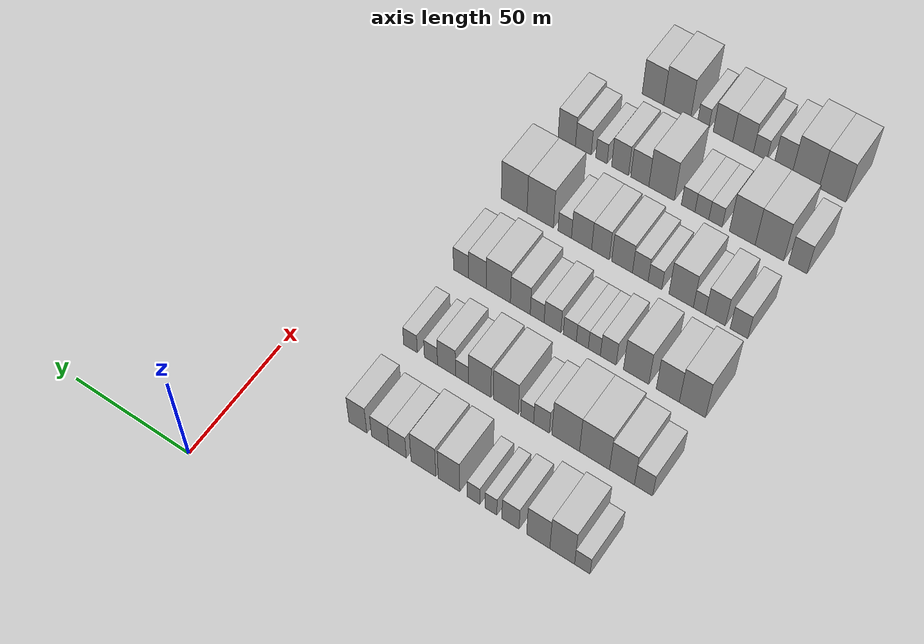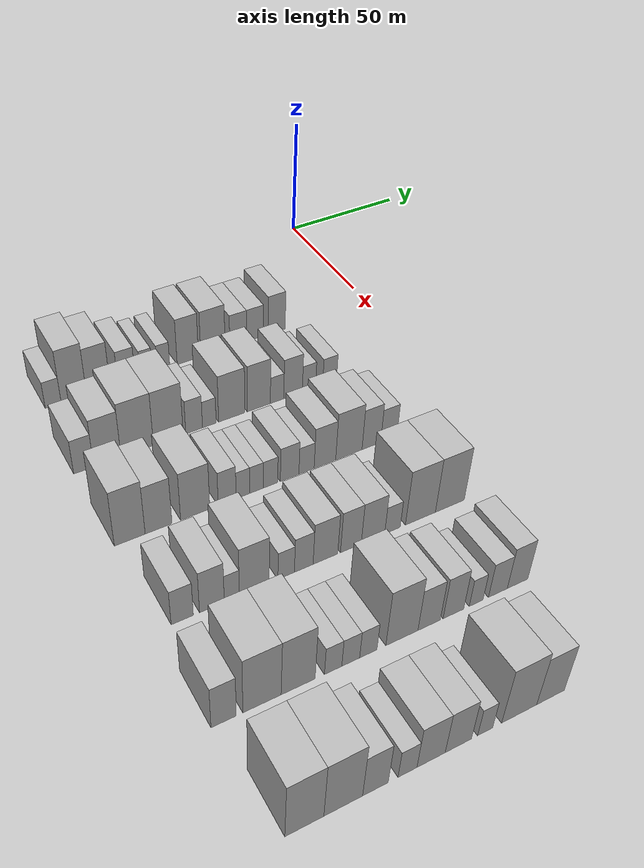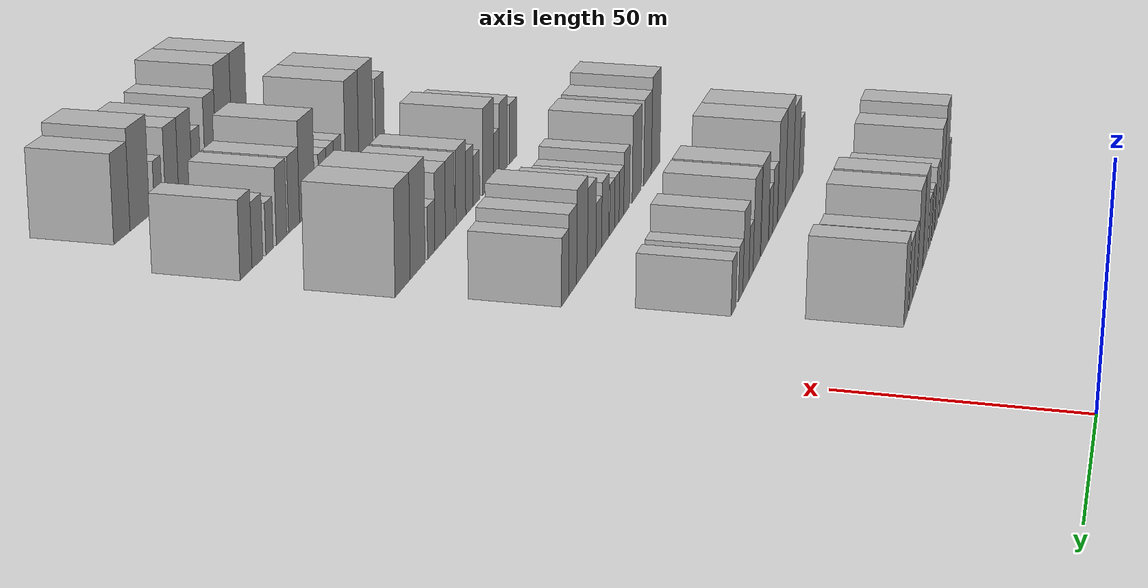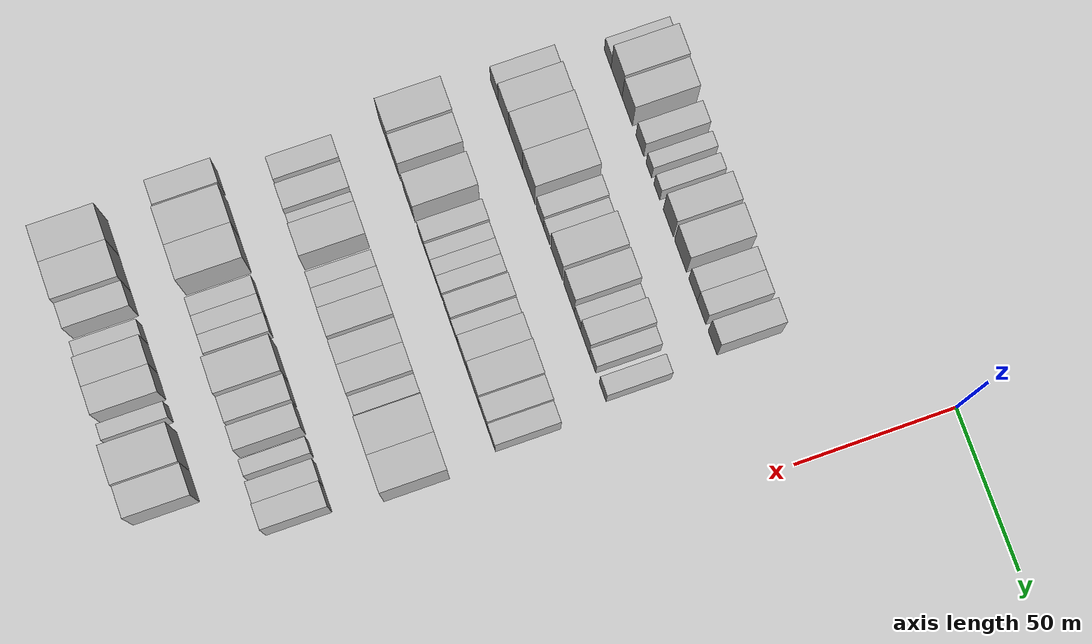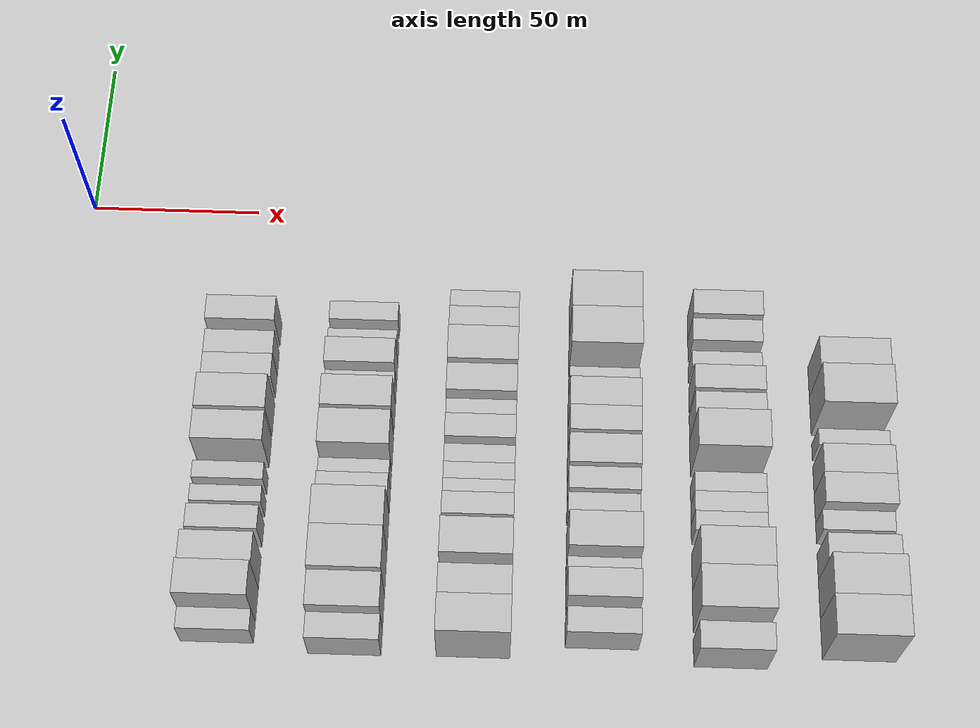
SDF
<sdf version="1.6">
 <world name="default">
  <model name="building_46">
   <static>1</static>
   <pose>50.0000 -131.7362 0 0.000000 0.000000 0.000000</pose>
   <link name="link">
    <pose>0 0 6.00 0 0 0</pose>
    <collision name="collision"><geometry><box><size>20.0000 5.9725 12.0000</size></box></geometry></collision>
    <visual name="visual">
     <cast_shadows>0</cast_shadows>
     <geometry><box><size>20.0000 5.9725 12.0000</size></box></geometry>
     <material>
      <script>
       <uri>model://HANNAS_wall/materials/scripts</uri>
       <uri>model://HANNAS_wall/materials/textures</uri>
       <name>vrc/HANNAS_wall</name>
      </script>
     </material>
    </visual>
   </link>
  </model>
  <model name="building_47">
   <static>1</static>
   <pose>50.0000 -123.9378 0 0.000000 0.000000 0.000000</pose>
   <link name="link">
    <pose>0 0 12.00 0 0 0</pose>
    <collision name="collision"><geometry><box><size>20.0000 9.6244 24.0000</size></box></geometry></collision>
    <visual name="visual">
     <cast_shadows>0</cast_shadows>
     <geometry><box><size>20.0000 9.6244 24.0000</size></box></geometry>
     <material>
      <script>
       <uri>model://HANNAS_wall/materials/scripts</uri>
       <uri>model://HANNAS_wall/materials/textures</uri>
       <name>vrc/HANNAS_wall</name>
      </script>
     </material>
    </visual>
   </link>
  </model>
  <model name="building_48">
   <static>1</static>
   <pose>50.0000 -114.5761 0 0.000000 0.000000 0.000000</pose>
   <link name="link">
    <pose>0 0 10.50 0 0 0</pose>
    <collision name="collision"><geometry><box><size>20.0000 9.0991 21.0000</size></box></geometry></collision>
    <visual name="visual">
     <cast_shadows>0</cast_shadows>
     <geometry><box><size>20.0000 9.0991 21.0000</size></box></geometry>
     <material>
      <script>
       <uri>model://HANNAS_wall/materials/scripts</uri>
       <uri>model://HANNAS_wall/materials/textures</uri>
       <name>vrc/HANNAS_wall</name>
      </script>
     </material>
    </visual>
   </link>
  </model>
  <model name="building_49">
   <static>1</static>
   <pose>50.0000 -103.6058 0 0.000000 0.000000 0.000000</pose>
   <link name="link">
    <pose>0 0 7.50 0 0 0</pose>
    <collision name="collision"><geometry><box><size>20.0000 6.8415 15.0000</size></box></geometry></collision>
    <visual name="visual">
     <cast_shadows>0</cast_shadows>
     <geometry><box><size>20.0000 6.8415 15.0000</size></box></geometry>
     <material>
      <script>
       <uri>model://HANNAS_wall/materials/scripts</uri>
       <uri>model://HANNAS_wall/materials/textures</uri>
       <name>vrc/HANNAS_wall</name>
      </script>
     </material>
    </visual>
   </link>
  </model>
  <model name="building_50">
   <static>1</static>
   <pose>50.0000 -95.7800 0 0.000000 0.000000 0.000000</pose>
   <link name="link">
    <pose>0 0 6.00 0 0 0</pose>
    <collision name="collision"><geometry><box><size>20.0000 4.8100 12.0000</size></box></geometry></collision>
    <visual name="visual">
     <cast_shadows>0</cast_shadows>
     <geometry><box><size>20.0000 4.8100 12.0000</size></box></geometry>
     <material>
      <script>
       <uri>model://HANNAS_wall/materials/scripts</uri>
       <uri>model://HANNAS_wall/materials/textures</uri>
       <name>vrc/HANNAS_wall</name>
      </script>
     </material>
    </visual>
   </link>
  </model>
  <model name="building_51">
   <static>1</static>
   <pose>50.0000 -88.8251 0 0.000000 0.000000 0.000000</pose>
   <link name="link">
    <pose>0 0 6.00 0 0 0</pose>
    <collision name="collision"><geometry><box><size>20.0000 5.0998 12.0000</size></box></geometry></collision>
    <visual name="visual">
     <cast_shadows>0</cast_shadows>
     <geometry><box><size>20.0000 5.0998 12.0000</size></box></geometry>
     <material>
      <script>
       <uri>model://HANNAS_wall/materials/scripts</uri>
       <uri>model://HANNAS_wall/materials/textures</uri>
       <name>vrc/HANNAS_wall</name>
      </script>
     </material>
    </visual>
   </link>
  </model>
  <model name="building_52">
   <static>1</static>
   <pose>50.0000 -78.9045 0 0.000000 0.000000 0.000000</pose>
   <link name="link">
    <pose>0 0 10.50 0 0 0</pose>
    <collision name="collision"><geometry><box><size>20.0000 8.7416 21.0000</size></box></geometry></collision>
    <visual name="visual">
     <cast_shadows>0</cast_shadows>
     <geometry><box><size>20.0000 8.7416 21.0000</size></box></geometry>
     <material>
      <script>
       <uri>model://HANNAS_wall/materials/scripts</uri>
       <uri>model://HANNAS_wall/materials/textures</uri>
       <name>vrc/HANNAS_wall</name>
      </script>
     </material>
    </visual>
   </link>
  </model>
  <model name="building_53">
   <static>1</static>
   <pose>50.0000 -68.4530 0 0.000000 0.000000 0.000000</pose>
   <link name="link">
    <pose>0 0 10.50 0 0 0</pose>
    <collision name="collision"><geometry><box><size>20.0000 10.1614 21.0000</size></box></geometry></collision>
    <visual name="visual">
     <cast_shadows>0</cast_shadows>
     <geometry><box><size>20.0000 10.1614 21.0000</size></box></geometry>
     <material>
      <script>
       <uri>model://HANNAS_wall/materials/scripts</uri>
       <uri>model://HANNAS_wall/materials/textures</uri>
       <name>vrc/HANNAS_wall</name>
      </script>
     </material>
    </visual>
   </link>
  </model>
  <model name="building_54">
   <static>1</static>
   <pose>50.0000 -57.7697 0 0.000000 0.000000 0.000000</pose>
   <link name="link">
    <pose>0 0 7.50 0 0 0</pose>
    <collision name="collision"><geometry><box><size>20.0000 7.2052 15.0000</size></box></geometry></collision>
    <visual name="visual">
     <cast_shadows>0</cast_shadows>
     <geometry><box><size>20.0000 7.2052 15.0000</size></box></geometry>
     <material>
      <script>
       <uri>model://HANNAS_wall/materials/scripts</uri>
       <uri>model://HANNAS_wall/materials/textures</uri>
       <name>vrc/HANNAS_wall</name>
      </script>
     </material>
    </visual>
   </link>
  </model>
  <model name="building_55">
   <static>1</static>
   <pose>50.0000 -50.5477 0 0.000000 0.000000 0.000000</pose>
   <link name="link">
    <pose>0 0 7.50 0 0 0</pose>
    <collision name="collision"><geometry><box><size>20.0000 7.2387 15.0000</size></box></geometry></collision>
    <visual name="visual">
     <cast_shadows>0</cast_shadows>
     <geometry><box><size>20.0000 7.2387 15.0000</size></box></geometry>
     <material>
      <script>
       <uri>model://HANNAS_wall/materials/scripts</uri>
       <uri>model://HANNAS_wall/materials/textures</uri>
       <name>vrc/HANNAS_wall</name>
      </script>
     </material>
    </visual>
   </link>
  </model>
  <model name="building_56">
   <static>1</static>
   <pose>50.0000 -41.1578 0 0.000000 0.000000 0.000000</pose>
   <link name="link">
    <pose>0 0 9.00 0 0 0</pose>
    <collision name="collision"><geometry><box><size>20.0000 7.5411 18.0000</size></box></geometry></collision>
    <visual name="visual">
     <cast_shadows>0</cast_shadows>
     <geometry><box><size>20.0000 7.5411 18.0000</size></box></geometry>
     <material>
      <script>
       <uri>model://HANNAS_wall/materials/scripts</uri>
       <uri>model://HANNAS_wall/materials/textures</uri>
       <name>vrc/HANNAS_wall</name>
      </script>
     </material>
    </visual>
   </link>
  </model>
  <model name="building_176">
   <static>1</static>
   <pose>85.0000 -133.4857 0 0.000000 0.000000 0.000000</pose>
   <link name="link">
    <pose>0 0 7.50 0 0 0</pose>
    <collision name="collision"><geometry><box><size>20.0000 7.1160 15.0000</size></box></geometry></collision>
    <visual name="visual">
     <cast_shadows>0</cast_shadows>
     <geometry><box><size>20.0000 7.1160 15.0000</size></box></geometry>
     <material>
      <script>
       <uri>model://HANNAS_wall/materials/scripts</uri>
       <uri>model://HANNAS_wall/materials/textures</uri>
       <name>vrc/HANNAS_wall</name>
      </script>
     </material>
    </visual>
   </link>
  </model>
  <model name="building_177">
   <static>1</static>
   <pose>85.0000 -125.0099 0 0.000000 0.000000 0.000000</pose>
   <link name="link">
    <pose>0 0 10.50 0 0 0</pose>
    <collision name="collision"><geometry><box><size>20.0000 9.8356 21.0000</size></box></geometry></collision>
    <visual name="visual">
     <cast_shadows>0</cast_shadows>
     <geometry><box><size>20.0000 9.8356 21.0000</size></box></geometry>
     <material>
      <script>
       <uri>model://HANNAS_wall/materials/scripts</uri>
       <uri>model://HANNAS_wall/materials/textures</uri>
       <name>vrc/HANNAS_wall</name>
      </script>
     </material>
    </visual>
   </link>
  </model>
  <model name="building_178">
   <static>1</static>
   <pose>85.0000 -114.1124 0 0.000000 0.000000 0.000000</pose>
   <link name="link">
    <pose>0 0 12.00 0 0 0</pose>
    <collision name="collision"><geometry><box><size>20.0000 11.9594 24.0000</size></box></geometry></collision>
    <visual name="visual">
     <cast_shadows>0</cast_shadows>
     <geometry><box><size>20.0000 11.9594 24.0000</size></box></geometry>
     <material>
      <script>
       <uri>model://HANNAS_wall/materials/scripts</uri>
       <uri>model://HANNAS_wall/materials/textures</uri>
       <name>vrc/HANNAS_wall</name>
      </script>
     </material>
    </visual>
   </link>
  </model>
  <model name="building_179">
   <static>1</static>
   <pose>85.0000 -102.5580 0 0.000000 0.000000 0.000000</pose>
   <link name="link">
    <pose>0 0 12.00 0 0 0</pose>
    <collision name="collision"><geometry><box><size>20.0000 11.1494 24.0000</size></box></geometry></collision>
    <visual name="visual">
     <cast_shadows>0</cast_shadows>
     <geometry><box><size>20.0000 11.1494 24.0000</size></box></geometry>
     <material>
      <script>
       <uri>model://HANNAS_wall/materials/scripts</uri>
       <uri>model://HANNAS_wall/materials/textures</uri>
       <name>vrc/HANNAS_wall</name>
      </script>
     </material>
    </visual>
   </link>
  </model>
  <model name="building_180">
   <static>1</static>
   <pose>85.0000 -92.7846 0 0.000000 0.000000 0.000000</pose>
   <link name="link">
    <pose>0 0 7.50 0 0 0</pose>
    <collision name="collision"><geometry><box><size>20.0000 6.3975 15.0000</size></box></geometry></collision>
    <visual name="visual">
     <cast_shadows>0</cast_shadows>
     <geometry><box><size>20.0000 6.3975 15.0000</size></box></geometry>
     <material>
      <script>
       <uri>model://HANNAS_wall/materials/scripts</uri>
       <uri>model://HANNAS_wall/materials/textures</uri>
       <name>vrc/HANNAS_wall</name>
      </script>
     </material>
    </visual>
   </link>
  </model>
  <model name="building_181">
   <static>1</static>
   <pose>85.0000 -86.9482 0 0.000000 0.000000 0.000000</pose>
   <link name="link">
    <pose>0 0 6.00 0 0 0</pose>
    <collision name="collision"><geometry><box><size>20.0000 5.2753 12.0000</size></box></geometry></collision>
    <visual name="visual">
     <cast_shadows>0</cast_shadows>
     <geometry><box><size>20.0000 5.2753 12.0000</size></box></geometry>
     <material>
      <script>
       <uri>model://HANNAS_wall/materials/scripts</uri>
       <uri>model://HANNAS_wall/materials/textures</uri>
       <name>vrc/HANNAS_wall</name>
      </script>
     </material>
    </visual>
   </link>
  </model>
  <model name="building_182">
   <static>1</static>
   <pose>85.0000 -78.1655 0 0.000000 0.000000 0.000000</pose>
   <link name="link">
    <pose>0 0 10.50 0 0 0</pose>
    <collision name="collision"><geometry><box><size>20.0000 10.2900 21.0000</size></box></geometry></collision>
    <visual name="visual">
     <cast_shadows>0</cast_shadows>
     <geometry><box><size>20.0000 10.2900 21.0000</size></box></geometry>
     <material>
      <script>
       <uri>model://HANNAS_wall/materials/scripts</uri>
       <uri>model://HANNAS_wall/materials/textures</uri>
       <name>vrc/HANNAS_wall</name>
      </script>
     </material>
    </visual>
   </link>
  </model>
  <model name="building_183">
   <static>1</static>
   <pose>85.0000 -67.3825 0 0.000000 0.000000 0.000000</pose>
   <link name="link">
    <pose>0 0 10.50 0 0 0</pose>
    <collision name="collision"><geometry><box><size>20.0000 9.2760 21.0000</size></box></geometry></collision>
    <visual name="visual">
     <cast_shadows>0</cast_shadows>
     <geometry><box><size>20.0000 9.2760 21.0000</size></box></geometry>
     <material>
      <script>
       <uri>model://HANNAS_wall/materials/scripts</uri>
       <uri>model://HANNAS_wall/materials/textures</uri>
       <name>vrc/HANNAS_wall</name>
      </script>
     </material>
    </visual>
   </link>
  </model>
  <model name="building_184">
   <static>1</static>
   <pose>85.0000 -60.0213 0 0.000000 0.000000 0.000000</pose>
   <link name="link">
    <pose>0 0 6.00 0 0 0</pose>
    <collision name="collision"><geometry><box><size>20.0000 5.4463 12.0000</size></box></geometry></collision>
    <visual name="visual">
     <cast_shadows>0</cast_shadows>
     <geometry><box><size>20.0000 5.4463 12.0000</size></box></geometry>
     <material>
      <script>
       <uri>model://HANNAS_wall/materials/scripts</uri>
       <uri>model://HANNAS_wall/materials/textures</uri>
       <name>vrc/HANNAS_wall</name>
      </script>
     </material>
    </visual>
   </link>
  </model>
  <model name="building_185">
   <static>1</static>
   <pose>85.0000 -53.4636 0 0.000000 0.000000 0.000000</pose>
   <link name="link">
    <pose>0 0 9.00 0 0 0</pose>
    <collision name="collision"><geometry><box><size>20.0000 7.6691 18.0000</size></box></geometry></collision>
    <visual name="visual">
     <cast_shadows>0</cast_shadows>
     <geometry><box><size>20.0000 7.6691 18.0000</size></box></geometry>
     <material>
      <script>
       <uri>model://HANNAS_wall/materials/scripts</uri>
       <uri>model://HANNAS_wall/materials/textures</uri>
       <name>vrc/HANNAS_wall</name>
      </script>
     </material>
    </visual>
   </link>
  </model>
  <model name="building_186">
   <static>1</static>
   <pose>85.0000 -46.8465 0 0.000000 0.000000 0.000000</pose>
   <link name="link">
    <pose>0 0 6.00 0 0 0</pose>
    <collision name="collision"><geometry><box><size>20.0000 5.5653 12.0000</size></box></geometry></collision>
    <visual name="visual">
     <cast_shadows>0</cast_shadows>
     <geometry><box><size>20.0000 5.5653 12.0000</size></box></geometry>
     <material>
      <script>
       <uri>model://HANNAS_wall/materials/scripts</uri>
       <uri>model://HANNAS_wall/materials/textures</uri>
       <name>vrc/HANNAS_wall</name>
      </script>
     </material>
    </visual>
   </link>
  </model>
  <model name="building_187">
   <static>1</static>
   <pose>85.0000 -38.1307 0 0.000000 0.000000 0.000000</pose>
   <link name="link">
    <pose>0 0 6.00 0 0 0</pose>
    <collision name="collision"><geometry><box><size>20.0000 5.8663 12.0000</size></box></geometry></collision>
    <visual name="visual">
     <cast_shadows>0</cast_shadows>
     <geometry><box><size>20.0000 5.8663 12.0000</size></box></geometry>
     <material>
      <script>
       <uri>model://HANNAS_wall/materials/scripts</uri>
       <uri>model://HANNAS_wall/materials/textures</uri>
       <name>vrc/HANNAS_wall</name>
      </script>
     </material>
    </visual>
   </link>
  </model>
  <model name="building_304">
   <static>1</static>
   <pose>120.0000 -131.4698 0 0.000000 0.000000 0.000000</pose>
   <link name="link">
    <pose>0 0 12.00 0 0 0</pose>
    <collision name="collision"><geometry><box><size>20.0000 10.4191 24.0000</size></box></geometry></collision>
    <visual name="visual">
     <cast_shadows>0</cast_shadows>
     <geometry><box><size>20.0000 10.4191 24.0000</size></box></geometry>
     <material>
      <script>
       <uri>model://HANNAS_wall/materials/scripts</uri>
       <uri>model://HANNAS_wall/materials/textures</uri>
       <name>vrc/HANNAS_wall</name>
      </script>
     </material>
    </visual>
   </link>
  </model>
  <model name="building_305">
   <static>1</static>
   <pose>120.0000 -121.6467 0 0.000000 0.000000 0.000000</pose>
   <link name="link">
    <pose>0 0 10.50 0 0 0</pose>
    <collision name="collision"><geometry><box><size>20.0000 9.2270 21.0000</size></box></geometry></collision>
    <visual name="visual">
     <cast_shadows>0</cast_shadows>
     <geometry><box><size>20.0000 9.2270 21.0000</size></box></geometry>
     <material>
      <script>
       <uri>model://HANNAS_wall/materials/scripts</uri>
       <uri>model://HANNAS_wall/materials/textures</uri>
       <name>vrc/HANNAS_wall</name>
      </script>
     </material>
    </visual>
   </link>
  </model>
  <model name="building_306">
   <static>1</static>
   <pose>120.0000 -108.8775 0 0.000000 0.000000 0.000000</pose>
   <link name="link">
    <pose>0 0 10.50 0 0 0</pose>
    <collision name="collision"><geometry><box><size>20.0000 10.3116 21.0000</size></box></geometry></collision>
    <visual name="visual">
     <cast_shadows>0</cast_shadows>
     <geometry><box><size>20.0000 10.3116 21.0000</size></box></geometry>
     <material>
      <script>
       <uri>model://HANNAS_wall/materials/scripts</uri>
       <uri>model://HANNAS_wall/materials/textures</uri>
       <name>vrc/HANNAS_wall</name>
      </script>
     </material>
    </visual>
   </link>
  </model>
  <model name="building_307">
   <static>1</static>
   <pose>120.0000 -97.4882 0 0.000000 0.000000 0.000000</pose>
   <link name="link">
    <pose>0 0 7.50 0 0 0</pose>
    <collision name="collision"><geometry><box><size>20.0000 6.4670 15.0000</size></box></geometry></collision>
    <visual name="visual">
     <cast_shadows>0</cast_shadows>
     <geometry><box><size>20.0000 6.4670 15.0000</size></box></geometry>
     <material>
      <script>
       <uri>model://HANNAS_wall/materials/scripts</uri>
       <uri>model://HANNAS_wall/materials/textures</uri>
       <name>vrc/HANNAS_wall</name>
      </script>
     </material>
    </visual>
   </link>
  </model>
  <model name="building_308">
   <static>1</static>
   <pose>120.0000 -91.7593 0 0.000000 0.000000 0.000000</pose>
   <link name="link">
    <pose>0 0 6.00 0 0 0</pose>
    <collision name="collision"><geometry><box><size>20.0000 4.9907 12.0000</size></box></geometry></collision>
    <visual name="visual">
     <cast_shadows>0</cast_shadows>
     <geometry><box><size>20.0000 4.9907 12.0000</size></box></geometry>
     <material>
      <script>
       <uri>model://HANNAS_wall/materials/scripts</uri>
       <uri>model://HANNAS_wall/materials/textures</uri>
       <name>vrc/HANNAS_wall</name>
      </script>
     </material>
    </visual>
   </link>
  </model>
  <model name="building_309">
   <static>1</static>
   <pose>120.0000 -86.7746 0 0.000000 0.000000 0.000000</pose>
   <link name="link">
    <pose>0 0 6.00 0 0 0</pose>
    <collision name="collision"><geometry><box><size>20.0000 4.9787 12.0000</size></box></geometry></collision>
    <visual name="visual">
     <cast_shadows>0</cast_shadows>
     <geometry><box><size>20.0000 4.9787 12.0000</size></box></geometry>
     <material>
      <script>
       <uri>model://HANNAS_wall/materials/scripts</uri>
       <uri>model://HANNAS_wall/materials/textures</uri>
       <name>vrc/HANNAS_wall</name>
      </script>
     </material>
    </visual>
   </link>
  </model>
  <model name="building_310">
   <static>1</static>
   <pose>120.0000 -81.5745 0 0.000000 0.000000 0.000000</pose>
   <link name="link">
    <pose>0 0 6.00 0 0 0</pose>
    <collision name="collision"><geometry><box><size>20.0000 5.4217 12.0000</size></box></geometry></collision>
    <visual name="visual">
     <cast_shadows>0</cast_shadows>
     <geometry><box><size>20.0000 5.4217 12.0000</size></box></geometry>
     <material>
      <script>
       <uri>model://HANNAS_wall/materials/scripts</uri>
       <uri>model://HANNAS_wall/materials/textures</uri>
       <name>vrc/HANNAS_wall</name>
      </script>
     </material>
    </visual>
   </link>
  </model>
  <model name="building_311">
   <static>1</static>
   <pose>120.0000 -74.3457 0 0.000000 0.000000 0.000000</pose>
   <link name="link">
    <pose>0 0 7.50 0 0 0</pose>
    <collision name="collision"><geometry><box><size>20.0000 7.0358 15.0000</size></box></geometry></collision>
    <visual name="visual">
     <cast_shadows>0</cast_shadows>
     <geometry><box><size>20.0000 7.0358 15.0000</size></box></geometry>
     <material>
      <script>
       <uri>model://HANNAS_wall/materials/scripts</uri>
       <uri>model://HANNAS_wall/materials/textures</uri>
       <name>vrc/HANNAS_wall</name>
      </script>
     </material>
    </visual>
   </link>
  </model>
  <model name="building_312">
   <static>1</static>
   <pose>120.0000 -67.9034 0 0.000000 0.000000 0.000000</pose>
   <link name="link">
    <pose>0 0 6.00 0 0 0</pose>
    <collision name="collision"><geometry><box><size>20.0000 5.8489 12.0000</size></box></geometry></collision>
    <visual name="visual">
     <cast_shadows>0</cast_shadows>
     <geometry><box><size>20.0000 5.8489 12.0000</size></box></geometry>
     <material>
      <script>
       <uri>model://HANNAS_wall/materials/scripts</uri>
       <uri>model://HANNAS_wall/materials/textures</uri>
       <name>vrc/HANNAS_wall</name>
      </script>
     </material>
    </visual>
   </link>
  </model>
  <model name="building_313">
   <static>1</static>
   <pose>120.0000 -60.7712 0 0.000000 0.000000 0.000000</pose>
   <link name="link">
    <pose>0 0 9.00 0 0 0</pose>
    <collision name="collision"><geometry><box><size>20.0000 8.4154 18.0000</size></box></geometry></collision>
    <visual name="visual">
     <cast_shadows>0</cast_shadows>
     <geometry><box><size>20.0000 8.4154 18.0000</size></box></geometry>
     <material>
      <script>
       <uri>model://HANNAS_wall/materials/scripts</uri>
       <uri>model://HANNAS_wall/materials/textures</uri>
       <name>vrc/HANNAS_wall</name>
      </script>
     </material>
    </visual>
   </link>
  </model>
  <model name="building_314">
   <static>1</static>
   <pose>120.0000 -51.3506 0 0.000000 0.000000 0.000000</pose>
   <link name="link">
    <pose>0 0 10.50 0 0 0</pose>
    <collision name="collision"><geometry><box><size>20.0000 10.4258 21.0000</size></box></geometry></collision>
    <visual name="visual">
     <cast_shadows>0</cast_shadows>
     <geometry><box><size>20.0000 10.4258 21.0000</size></box></geometry>
     <material>
      <script>
       <uri>model://HANNAS_wall/materials/scripts</uri>
       <uri>model://HANNAS_wall/materials/textures</uri>
       <name>vrc/HANNAS_wall</name>
      </script>
     </material>
    </visual>
   </link>
  </model>
  <model name="building_315">
   <static>1</static>
   <pose>120.0000 -42.3791 0 0.000000 0.000000 0.000000</pose>
   <link name="link">
    <pose>0 0 9.00 0 0 0</pose>
    <collision name="collision"><geometry><box><size>20.0000 7.5172 18.0000</size></box></geometry></collision>
    <visual name="visual">
     <cast_shadows>0</cast_shadows>
     <geometry><box><size>20.0000 7.5172 18.0000</size></box></geometry>
     <material>
      <script>
       <uri>model://HANNAS_wall/materials/scripts</uri>
       <uri>model://HANNAS_wall/materials/textures</uri>
       <name>vrc/HANNAS_wall</name>
      </script>
     </material>
    </visual>
   </link>
  </model>
  <model name="building_316">
   <static>1</static>
   <pose>120.0000 -35.3237 0 0.000000 0.000000 0.000000</pose>
   <link name="link">
    <pose>0 0 7.50 0 0 0</pose>
    <collision name="collision"><geometry><box><size>20.0000 6.5937 15.0000</size></box></geometry></collision>
    <visual name="visual">
     <cast_shadows>0</cast_shadows>
     <geometry><box><size>20.0000 6.5937 15.0000</size></box></geometry>
     <material>
      <script>
       <uri>model://HANNAS_wall/materials/scripts</uri>
       <uri>model://HANNAS_wall/materials/textures</uri>
       <name>vrc/HANNAS_wall</name>
      </script>
     </material>
    </visual>
   </link>
  </model>
  <model name="building_429">
   <static>1</static>
   <pose>155.0000 -129.5724 0 0.000000 0.000000 0.000000</pose>
   <link name="link">
    <pose>0 0 7.50 0 0 0</pose>
    <collision name="collision"><geometry><box><size>20.0000 7.0973 15.0000</size></box></geometry></collision>
    <visual name="visual">
     <cast_shadows>0</cast_shadows>
     <geometry><box><size>20.0000 7.0973 15.0000</size></box></geometry>
     <material>
      <script>
       <uri>model://HANNAS_wall/materials/scripts</uri>
       <uri>model://HANNAS_wall/materials/textures</uri>
       <name>vrc/HANNAS_wall</name>
      </script>
     </material>
    </visual>
   </link>
  </model>
  <model name="building_430">
   <static>1</static>
   <pose>155.0000 -119.9799 0 0.000000 0.000000 0.000000</pose>
   <link name="link">
    <pose>0 0 9.00 0 0 0</pose>
    <collision name="collision"><geometry><box><size>20.0000 8.0877 18.0000</size></box></geometry></collision>
    <visual name="visual">
     <cast_shadows>0</cast_shadows>
     <geometry><box><size>20.0000 8.0877 18.0000</size></box></geometry>
     <material>
      <script>
       <uri>model://HANNAS_wall/materials/scripts</uri>
       <uri>model://HANNAS_wall/materials/textures</uri>
       <name>vrc/HANNAS_wall</name>
      </script>
     </material>
    </visual>
   </link>
  </model>
  <model name="building_431">
   <static>1</static>
   <pose>155.0000 -113.4479 0 0.000000 0.000000 0.000000</pose>
   <link name="link">
    <pose>0 0 6.00 0 0 0</pose>
    <collision name="collision"><geometry><box><size>20.0000 4.9764 12.0000</size></box></geometry></collision>
    <visual name="visual">
     <cast_shadows>0</cast_shadows>
     <geometry><box><size>20.0000 4.9764 12.0000</size></box></geometry>
     <material>
      <script>
       <uri>model://HANNAS_wall/materials/scripts</uri>
       <uri>model://HANNAS_wall/materials/textures</uri>
       <name>vrc/HANNAS_wall</name>
      </script>
     </material>
    </visual>
   </link>
  </model>
  <model name="building_432">
   <static>1</static>
   <pose>155.0000 -105.9214 0 0.000000 0.000000 0.000000</pose>
   <link name="link">
    <pose>0 0 10.50 0 0 0</pose>
    <collision name="collision"><geometry><box><size>20.0000 10.0765 21.0000</size></box></geometry></collision>
    <visual name="visual">
     <cast_shadows>0</cast_shadows>
     <geometry><box><size>20.0000 10.0765 21.0000</size></box></geometry>
     <material>
      <script>
       <uri>model://HANNAS_wall/materials/scripts</uri>
       <uri>model://HANNAS_wall/materials/textures</uri>
       <name>vrc/HANNAS_wall</name>
      </script>
     </material>
    </visual>
   </link>
  </model>
  <model name="building_433">
   <static>1</static>
   <pose>155.0000 -95.0357 0 0.000000 0.000000 0.000000</pose>
   <link name="link">
    <pose>0 0 6.00 0 0 0</pose>
    <collision name="collision"><geometry><box><size>20.0000 5.6950 12.0000</size></box></geometry></collision>
    <visual name="visual">
     <cast_shadows>0</cast_shadows>
     <geometry><box><size>20.0000 5.6950 12.0000</size></box></geometry>
     <material>
      <script>
       <uri>model://HANNAS_wall/materials/scripts</uri>
       <uri>model://HANNAS_wall/materials/textures</uri>
       <name>vrc/HANNAS_wall</name>
      </script>
     </material>
    </visual>
   </link>
  </model>
  <model name="building_434">
   <static>1</static>
   <pose>155.0000 -88.9055 0 0.000000 0.000000 0.000000</pose>
   <link name="link">
    <pose>0 0 7.50 0 0 0</pose>
    <collision name="collision"><geometry><box><size>20.0000 6.5654 15.0000</size></box></geometry></collision>
    <visual name="visual">
     <cast_shadows>0</cast_shadows>
     <geometry><box><size>20.0000 6.5654 15.0000</size></box></geometry>
     <material>
      <script>
       <uri>model://HANNAS_wall/materials/scripts</uri>
       <uri>model://HANNAS_wall/materials/textures</uri>
       <name>vrc/HANNAS_wall</name>
      </script>
     </material>
    </visual>
   </link>
  </model>
  <model name="building_435">
   <static>1</static>
   <pose>155.0000 -81.2386 0 0.000000 0.000000 0.000000</pose>
   <link name="link">
    <pose>0 0 9.00 0 0 0</pose>
    <collision name="collision"><geometry><box><size>20.0000 8.7684 18.0000</size></box></geometry></collision>
    <visual name="visual">
     <cast_shadows>0</cast_shadows>
     <geometry><box><size>20.0000 8.7684 18.0000</size></box></geometry>
     <material>
      <script>
       <uri>model://HANNAS_wall/materials/scripts</uri>
       <uri>model://HANNAS_wall/materials/textures</uri>
       <name>vrc/HANNAS_wall</name>
      </script>
     </material>
    </visual>
   </link>
  </model>
  <model name="building_436">
   <static>1</static>
   <pose>155.0000 -72.0785 0 0.000000 0.000000 0.000000</pose>
   <link name="link">
    <pose>0 0 9.00 0 0 0</pose>
    <collision name="collision"><geometry><box><size>20.0000 7.5517 18.0000</size></box></geometry></collision>
    <visual name="visual">
     <cast_shadows>0</cast_shadows>
     <geometry><box><size>20.0000 7.5517 18.0000</size></box></geometry>
     <material>
      <script>
       <uri>model://HANNAS_wall/materials/scripts</uri>
       <uri>model://HANNAS_wall/materials/textures</uri>
       <name>vrc/HANNAS_wall</name>
      </script>
     </material>
    </visual>
   </link>
  </model>
  <model name="building_437">
   <static>1</static>
   <pose>155.0000 -63.9809 0 0.000000 0.000000 0.000000</pose>
   <link name="link">
    <pose>0 0 9.00 0 0 0</pose>
    <collision name="collision"><geometry><box><size>20.0000 8.6435 18.0000</size></box></geometry></collision>
    <visual name="visual">
     <cast_shadows>0</cast_shadows>
     <geometry><box><size>20.0000 8.6435 18.0000</size></box></geometry>
     <material>
      <script>
       <uri>model://HANNAS_wall/materials/scripts</uri>
       <uri>model://HANNAS_wall/materials/textures</uri>
       <name>vrc/HANNAS_wall</name>
      </script>
     </material>
    </visual>
   </link>
  </model>
  <model name="building_438">
   <static>1</static>
   <pose>155.0000 -56.7512 0 0.000000 0.000000 0.000000</pose>
   <link name="link">
    <pose>0 0 6.00 0 0 0</pose>
    <collision name="collision"><geometry><box><size>20.0000 5.8159 12.0000</size></box></geometry></collision>
    <visual name="visual">
     <cast_shadows>0</cast_shadows>
     <geometry><box><size>20.0000 5.8159 12.0000</size></box></geometry>
     <material>
      <script>
       <uri>model://HANNAS_wall/materials/scripts</uri>
       <uri>model://HANNAS_wall/materials/textures</uri>
       <name>vrc/HANNAS_wall</name>
      </script>
     </material>
    </visual>
   </link>
  </model>
  <model name="building_439">
   <static>1</static>
   <pose>155.0000 -46.0939 0 0.000000 0.000000 0.000000</pose>
   <link name="link">
    <pose>0 0 12.00 0 0 0</pose>
    <collision name="collision"><geometry><box><size>20.0000 11.4987 24.0000</size></box></geometry></collision>
    <visual name="visual">
     <cast_shadows>0</cast_shadows>
     <geometry><box><size>20.0000 11.4987 24.0000</size></box></geometry>
     <material>
      <script>
       <uri>model://HANNAS_wall/materials/scripts</uri>
       <uri>model://HANNAS_wall/materials/textures</uri>
       <name>vrc/HANNAS_wall</name>
      </script>
     </material>
    </visual>
   </link>
  </model>
  <model name="building_440">
   <static>1</static>
   <pose>155.0000 -34.6879 0 0.000000 0.000000 0.000000</pose>
   <link name="link">
    <pose>0 0 12.00 0 0 0</pose>
    <collision name="collision"><geometry><box><size>20.0000 11.3133 24.0000</size></box></geometry></collision>
    <visual name="visual">
     <cast_shadows>0</cast_shadows>
     <geometry><box><size>20.0000 11.3133 24.0000</size></box></geometry>
     <material>
      <script>
       <uri>model://HANNAS_wall/materials/scripts</uri>
       <uri>model://HANNAS_wall/materials/textures</uri>
       <name>vrc/HANNAS_wall</name>
      </script>
     </material>
    </visual>
   </link>
  </model>
  <model name="building_553">
   <static>1</static>
   <pose>190.0000 -133.5269 0 0.000000 0.000000 0.000000</pose>
   <link name="link">
    <pose>0 0 9.00 0 0 0</pose>
    <collision name="collision"><geometry><box><size>20.0000 7.5515 18.0000</size></box></geometry></collision>
    <visual name="visual">
     <cast_shadows>0</cast_shadows>
     <geometry><box><size>20.0000 7.5515 18.0000</size></box></geometry>
     <material>
      <script>
       <uri>model://HANNAS_wall/materials/scripts</uri>
       <uri>model://HANNAS_wall/materials/textures</uri>
       <name>vrc/HANNAS_wall</name>
      </script>
     </material>
    </visual>
   </link>
  </model>
  <model name="building_554">
   <static>1</static>
   <pose>190.0000 -121.8619 0 0.000000 0.000000 0.000000</pose>
   <link name="link">
    <pose>0 0 12.00 0 0 0</pose>
    <collision name="collision"><geometry><box><size>20.0000 11.7784 24.0000</size></box></geometry></collision>
    <visual name="visual">
     <cast_shadows>0</cast_shadows>
     <geometry><box><size>20.0000 11.7784 24.0000</size></box></geometry>
     <material>
      <script>
       <uri>model://HANNAS_wall/materials/scripts</uri>
       <uri>model://HANNAS_wall/materials/textures</uri>
       <name>vrc/HANNAS_wall</name>
      </script>
     </material>
    </visual>
   </link>
  </model>
  <model name="building_555">
   <static>1</static>
   <pose>190.0000 -110.6012 0 0.000000 0.000000 0.000000</pose>
   <link name="link">
    <pose>0 0 12.00 0 0 0</pose>
    <collision name="collision"><geometry><box><size>20.0000 10.7430 24.0000</size></box></geometry></collision>
    <visual name="visual">
     <cast_shadows>0</cast_shadows>
     <geometry><box><size>20.0000 10.7430 24.0000</size></box></geometry>
     <material>
      <script>
       <uri>model://HANNAS_wall/materials/scripts</uri>
       <uri>model://HANNAS_wall/materials/textures</uri>
       <name>vrc/HANNAS_wall</name>
      </script>
     </material>
    </visual>
   </link>
  </model>
  <model name="building_556">
   <static>1</static>
   <pose>190.0000 -99.4077 0 0.000000 0.000000 0.000000</pose>
   <link name="link">
    <pose>0 0 6.00 0 0 0</pose>
    <collision name="collision"><geometry><box><size>20.0000 5.6441 12.0000</size></box></geometry></collision>
    <visual name="visual">
     <cast_shadows>0</cast_shadows>
     <geometry><box><size>20.0000 5.6441 12.0000</size></box></geometry>
     <material>
      <script>
       <uri>model://HANNAS_wall/materials/scripts</uri>
       <uri>model://HANNAS_wall/materials/textures</uri>
       <name>vrc/HANNAS_wall</name>
      </script>
     </material>
    </visual>
   </link>
  </model>
  <model name="building_557">
   <static>1</static>
   <pose>190.0000 -93.6508 0 0.000000 0.000000 0.000000</pose>
   <link name="link">
    <pose>0 0 6.00 0 0 0</pose>
    <collision name="collision"><geometry><box><size>20.0000 5.8696 12.0000</size></box></geometry></collision>
    <visual name="visual">
     <cast_shadows>0</cast_shadows>
     <geometry><box><size>20.0000 5.8696 12.0000</size></box></geometry>
     <material>
      <script>
       <uri>model://HANNAS_wall/materials/scripts</uri>
       <uri>model://HANNAS_wall/materials/textures</uri>
       <name>vrc/HANNAS_wall</name>
      </script>
     </material>
    </visual>
   </link>
  </model>
  <model name="building_558">
   <static>1</static>
   <pose>190.0000 -87.8318 0 0.000000 0.000000 0.000000</pose>
   <link name="link">
    <pose>0 0 6.00 0 0 0</pose>
    <collision name="collision"><geometry><box><size>20.0000 5.7685 12.0000</size></box></geometry></collision>
    <visual name="visual">
     <cast_shadows>0</cast_shadows>
     <geometry><box><size>20.0000 5.7685 12.0000</size></box></geometry>
     <material>
      <script>
       <uri>model://HANNAS_wall/materials/scripts</uri>
       <uri>model://HANNAS_wall/materials/textures</uri>
       <name>vrc/HANNAS_wall</name>
      </script>
     </material>
    </visual>
   </link>
  </model>
  <model name="building_559">
   <static>1</static>
   <pose>190.0000 -76.4436 0 0.000000 0.000000 0.000000</pose>
   <link name="link">
    <pose>0 0 12.00 0 0 0</pose>
    <collision name="collision"><geometry><box><size>20.0000 11.0079 24.0000</size></box></geometry></collision>
    <visual name="visual">
     <cast_shadows>0</cast_shadows>
     <geometry><box><size>20.0000 11.0079 24.0000</size></box></geometry>
     <material>
      <script>
       <uri>model://HANNAS_wall/materials/scripts</uri>
       <uri>model://HANNAS_wall/materials/textures</uri>
       <name>vrc/HANNAS_wall</name>
      </script>
     </material>
    </visual>
   </link>
  </model>
  <model name="building_560">
   <static>1</static>
   <pose>190.0000 -67.0376 0 0.000000 0.000000 0.000000</pose>
   <link name="link">
    <pose>0 0 9.00 0 0 0</pose>
    <collision name="collision"><geometry><box><size>20.0000 7.8041 18.0000</size></box></geometry></collision>
    <visual name="visual">
     <cast_shadows>0</cast_shadows>
     <geometry><box><size>20.0000 7.8041 18.0000</size></box></geometry>
     <material>
      <script>
       <uri>model://HANNAS_wall/materials/scripts</uri>
       <uri>model://HANNAS_wall/materials/textures</uri>
       <name>vrc/HANNAS_wall</name>
      </script>
     </material>
    </visual>
   </link>
  </model>
  <model name="building_561">
   <static>1</static>
   <pose>190.0000 -58.4469 0 0.000000 0.000000 0.000000</pose>
   <link name="link">
    <pose>0 0 9.00 0 0 0</pose>
    <collision name="collision"><geometry><box><size>20.0000 7.3773 18.0000</size></box></geometry></collision>
    <visual name="visual">
     <cast_shadows>0</cast_shadows>
     <geometry><box><size>20.0000 7.3773 18.0000</size></box></geometry>
     <material>
      <script>
       <uri>model://HANNAS_wall/materials/scripts</uri>
       <uri>model://HANNAS_wall/materials/textures</uri>
       <name>vrc/HANNAS_wall</name>
      </script>
     </material>
    </visual>
   </link>
  </model>
  <model name="building_562">
   <static>1</static>
   <pose>190.0000 -50.2645 0 0.000000 0.000000 0.000000</pose>
   <link name="link">
    <pose>0 0 6.00 0 0 0</pose>
    <collision name="collision"><geometry><box><size>20.0000 4.9876 12.0000</size></box></geometry></collision>
    <visual name="visual">
     <cast_shadows>0</cast_shadows>
     <geometry><box><size>20.0000 4.9876 12.0000</size></box></geometry>
     <material>
      <script>
       <uri>model://HANNAS_wall/materials/scripts</uri>
       <uri>model://HANNAS_wall/materials/textures</uri>
       <name>vrc/HANNAS_wall</name>
      </script>
     </material>
    </visual>
   </link>
  </model>
  <model name="building_563">
   <static>1</static>
   <pose>190.0000 -42.2841 0 0.000000 0.000000 0.000000</pose>
   <link name="link">
    <pose>0 0 7.50 0 0 0</pose>
    <collision name="collision"><geometry><box><size>20.0000 6.9733 15.0000</size></box></geometry></collision>
    <visual name="visual">
     <cast_shadows>0</cast_shadows>
     <geometry><box><size>20.0000 6.9733 15.0000</size></box></geometry>
     <material>
      <script>
       <uri>model://HANNAS_wall/materials/scripts</uri>
       <uri>model://HANNAS_wall/materials/textures</uri>
       <name>vrc/HANNAS_wall</name>
      </script>
     </material>
    </visual>
   </link>
  </model>
  <model name="building_564">
   <static>1</static>
   <pose>190.0000 -34.9416 0 0.000000 0.000000 0.000000</pose>
   <link name="link">
    <pose>0 0 9.00 0 0 0</pose>
    <collision name="collision"><geometry><box><size>20.0000 7.7117 18.0000</size></box></geometry></collision>
    <visual name="visual">
     <cast_shadows>0</cast_shadows>
     <geometry><box><size>20.0000 7.7117 18.0000</size></box></geometry>
     <material>
      <script>
       <uri>model://HANNAS_wall/materials/scripts</uri>
       <uri>model://HANNAS_wall/materials/textures</uri>
       <name>vrc/HANNAS_wall</name>
      </script>
     </material>
    </visual>
   </link>
  </model>
  <model name="building_675">
   <static>1</static>
   <pose>225.0000 -128.5852 0 0.000000 0.000000 0.000000</pose>
   <link name="link">
    <pose>0 0 12.00 0 0 0</pose>
    <collision name="collision"><geometry><box><size>20.0000 11.1228 24.0000</size></box></geometry></collision>
    <visual name="visual">
     <cast_shadows>0</cast_shadows>
     <geometry><box><size>20.0000 11.1228 24.0000</size></box></geometry>
     <material>
      <script>
       <uri>model://HANNAS_wall/materials/scripts</uri>
       <uri>model://HANNAS_wall/materials/textures</uri>
       <name>vrc/HANNAS_wall</name>
      </script>
     </material>
    </visual>
   </link>
  </model>
  <model name="building_676">
   <static>1</static>
   <pose>225.0000 -117.3394 0 0.000000 0.000000 0.000000</pose>
   <link name="link">
    <pose>0 0 12.00 0 0 0</pose>
    <collision name="collision"><geometry><box><size>20.0000 11.3688 24.0000</size></box></geometry></collision>
    <visual name="visual">
     <cast_shadows>0</cast_shadows>
     <geometry><box><size>20.0000 11.3688 24.0000</size></box></geometry>
     <material>
      <script>
       <uri>model://HANNAS_wall/materials/scripts</uri>
       <uri>model://HANNAS_wall/materials/textures</uri>
       <name>vrc/HANNAS_wall</name>
      </script>
     </material>
    </visual>
   </link>
  </model>
  <model name="building_677">
   <static>1</static>
   <pose>225.0000 -107.8127 0 0.000000 0.000000 0.000000</pose>
   <link name="link">
    <pose>0 0 9.00 0 0 0</pose>
    <collision name="collision"><geometry><box><size>20.0000 7.6846 18.0000</size></box></geometry></collision>
    <visual name="visual">
     <cast_shadows>0</cast_shadows>
     <geometry><box><size>20.0000 7.6846 18.0000</size></box></geometry>
     <material>
      <script>
       <uri>model://HANNAS_wall/materials/scripts</uri>
       <uri>model://HANNAS_wall/materials/textures</uri>
       <name>vrc/HANNAS_wall</name>
      </script>
     </material>
    </visual>
   </link>
  </model>
  <model name="building_678">
   <static>1</static>
   <pose>225.0000 -98.0563 0 0.000000 0.000000 0.000000</pose>
   <link name="link">
    <pose>0 0 6.00 0 0 0</pose>
    <collision name="collision"><geometry><box><size>20.0000 5.8282 12.0000</size></box></geometry></collision>
    <visual name="visual">
     <cast_shadows>0</cast_shadows>
     <geometry><box><size>20.0000 5.8282 12.0000</size></box></geometry>
     <material>
      <script>
       <uri>model://HANNAS_wall/materials/scripts</uri>
       <uri>model://HANNAS_wall/materials/textures</uri>
       <name>vrc/HANNAS_wall</name>
      </script>
     </material>
    </visual>
   </link>
  </model>
  <model name="building_679">
   <static>1</static>
   <pose>225.0000 -90.6948 0 0.000000 0.000000 0.000000</pose>
   <link name="link">
    <pose>0 0 9.00 0 0 0</pose>
    <collision name="collision"><geometry><box><size>20.0000 8.8948 18.0000</size></box></geometry></collision>
    <visual name="visual">
     <cast_shadows>0</cast_shadows>
     <geometry><box><size>20.0000 8.8948 18.0000</size></box></geometry>
     <material>
      <script>
       <uri>model://HANNAS_wall/materials/scripts</uri>
       <uri>model://HANNAS_wall/materials/textures</uri>
       <name>vrc/HANNAS_wall</name>
      </script>
     </material>
    </visual>
   </link>
  </model>
  <model name="building_680">
   <static>1</static>
   <pose>225.0000 -82.0257 0 0.000000 0.000000 0.000000</pose>
   <link name="link">
    <pose>0 0 9.00 0 0 0</pose>
    <collision name="collision"><geometry><box><size>20.0000 8.4434 18.0000</size></box></geometry></collision>
    <visual name="visual">
     <cast_shadows>0</cast_shadows>
     <geometry><box><size>20.0000 8.4434 18.0000</size></box></geometry>
     <material>
      <script>
       <uri>model://HANNAS_wall/materials/scripts</uri>
       <uri>model://HANNAS_wall/materials/textures</uri>
       <name>vrc/HANNAS_wall</name>
      </script>
     </material>
    </visual>
   </link>
  </model>
  <model name="building_681">
   <static>1</static>
   <pose>225.0000 -73.3390 0 0.000000 0.000000 0.000000</pose>
   <link name="link">
    <pose>0 0 6.00 0 0 0</pose>
    <collision name="collision"><geometry><box><size>20.0000 4.9299 12.0000</size></box></geometry></collision>
    <visual name="visual">
     <cast_shadows>0</cast_shadows>
     <geometry><box><size>20.0000 4.9299 12.0000</size></box></geometry>
     <material>
      <script>
       <uri>model://HANNAS_wall/materials/scripts</uri>
       <uri>model://HANNAS_wall/materials/textures</uri>
       <name>vrc/HANNAS_wall</name>
      </script>
     </material>
    </visual>
   </link>
  </model>
  <model name="building_682">
   <static>1</static>
   <pose>225.0000 -61.9652 0 0.000000 0.000000 0.000000</pose>
   <link name="link">
    <pose>0 0 12.00 0 0 0</pose>
    <collision name="collision"><geometry><box><size>20.0000 11.8179 24.0000</size></box></geometry></collision>
    <visual name="visual">
     <cast_shadows>0</cast_shadows>
     <geometry><box><size>20.0000 11.8179 24.0000</size></box></geometry>
     <material>
      <script>
       <uri>model://HANNAS_wall/materials/scripts</uri>
       <uri>model://HANNAS_wall/materials/textures</uri>
       <name>vrc/HANNAS_wall</name>
      </script>
     </material>
    </visual>
   </link>
  </model>
  <model name="building_683">
   <static>1</static>
   <pose>225.0000 -51.2692 0 0.000000 0.000000 0.000000</pose>
   <link name="link">
    <pose>0 0 10.50 0 0 0</pose>
    <collision name="collision"><geometry><box><size>20.0000 9.5741 21.0000</size></box></geometry></collision>
    <visual name="visual">
     <cast_shadows>0</cast_shadows>
     <geometry><box><size>20.0000 9.5741 21.0000</size></box></geometry>
     <material>
      <script>
       <uri>model://HANNAS_wall/materials/scripts</uri>
       <uri>model://HANNAS_wall/materials/textures</uri>
       <name>vrc/HANNAS_wall</name>
      </script>
     </material>
    </visual>
   </link>
  </model>
 </world>
</sdf>
